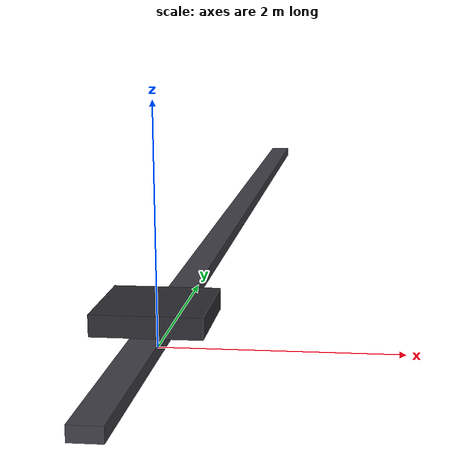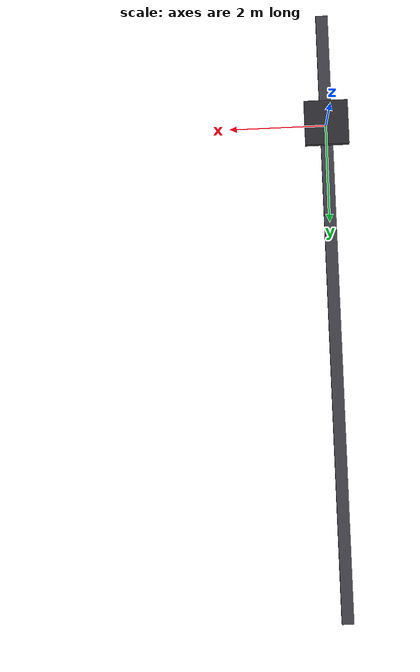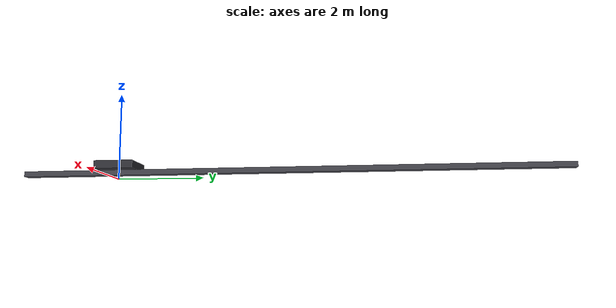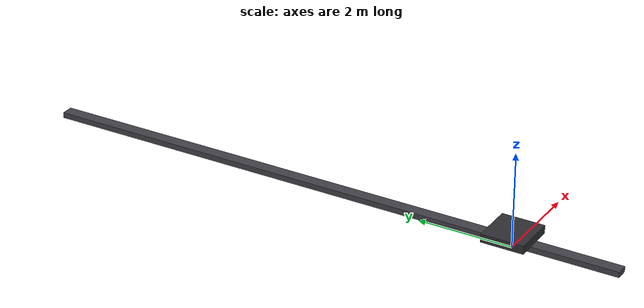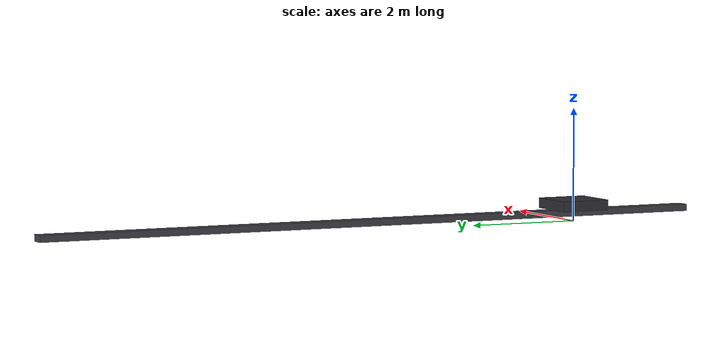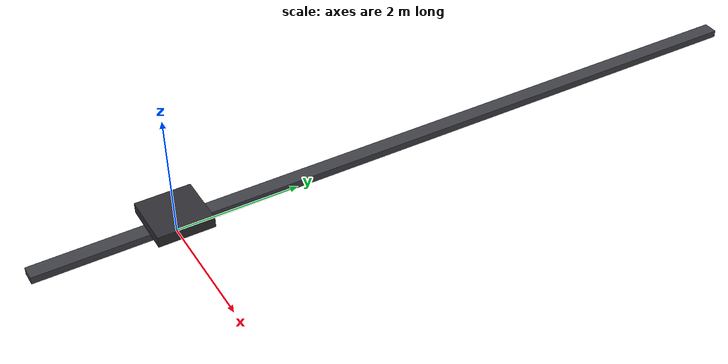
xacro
<?xml version="1.0"?>
<!--
  VIKA top-level composition.
  Usage:
    xacro vika.urdf.xacro prefix:=robot_a_ tool:=gripper
-->
<robot name="vika" xmlns:xacro="http://www.ros.org/wiki/xacro">

  <xacro:arg name="prefix" default=""/>
  <xacro:arg name="tool"   default="gripper"/>
  <xacro:arg name="ns"     default=""/>
  <xacro:arg name="arm"    default="false"/>
  <!-- World anchor for this robot (spawn pose is ignored by the world-fixed
       rail, so bake placement here). base_yaw=3.14159 faces the robot -X. -->
  <xacro:arg name="base_x"   default="0"/>
  <xacro:arg name="base_yaw" default="0"/>
  <!-- use_meshes:=true loads the Fusion CAD STLs; false uses the primitive
       box/cylinder fallbacks that match the joint kinematics exactly. -->
  <xacro:arg name="use_meshes" default="true"/>

  <xacro:property name="pfx" value="$(arg prefix)"/>
  <xacro:property name="tool_type" value="$(arg tool)"/>
  <xacro:property name="ns" value="$(arg ns)"/>
  <xacro:property name="arm_enabled" value="$(arg arm)"/>
  <xacro:property name="base_x" value="$(arg base_x)"/>
  <xacro:property name="base_yaw" value="$(arg base_yaw)"/>
  <xacro:property name="use_meshes" value="$(arg use_meshes)"/>

  <xacro:include filename="$(find vika_description)/urdf/base_rail.xacro"/>
  <xacro:include filename="$(find vika_description)/urdf/arm_6dof.xacro"/>
  <xacro:include filename="$(find vika_description)/urdf/tool_gripper.xacro"/>
  <xacro:include filename="$(find vika_description)/urdf/tool_cement.xacro"/>
  <xacro:include filename="$(find vika_description)/urdf/vika.ros2_control.xacro"/>

  <!-- Linear rail base: arm rides a prismatic carriage along world +Y. -->
  <xacro:base_rail prefix="${pfx}" base_x="${base_x}" base_yaw="${base_yaw}"/>

  <xacro:if value="${arm_enabled}">
    <xacro:property name="lock_j4" value="false"/>
    <xacro:if value="${use_meshes}">
      <xacro:arm_6dof prefix="${pfx}arm_" parent="${pfx}base_link" lock_j4="${lock_j4}">
        <origin xyz="0 0 0.09" rpy="0 0 0"/>
      </xacro:arm_6dof>
    </xacro:if>
    <xacro:unless value="${use_meshes}">
      <xacro:arm_6dof prefix="${pfx}arm_" parent="${pfx}base_link" lock_j4="${lock_j4}"
                      mesh_base_link="" mesh_link1="" mesh_link2="" mesh_link3=""
                      mesh_link4="" mesh_link5="" mesh_tool0="">
        <origin xyz="0 0 0.09" rpy="0 0 0"/>
      </xacro:arm_6dof>
    </xacro:unless>

    <xacro:if value="${tool_type == 'gripper'}">
      <xacro:tool_gripper prefix="${pfx}arm_" parent="${pfx}arm_tool0"/>
    </xacro:if>
    <xacro:if value="${tool_type == 'cement'}">
      <xacro:tool_cement prefix="${pfx}arm_" parent="${pfx}arm_tool0"/>
    </xacro:if>
  </xacro:if>

  <xacro:if value="${arm_enabled}">
    <xacro:vika_ros2_control prefix="${pfx}" ns="${ns}" tool="${tool_type}"/>
  </xacro:if>

</robot>

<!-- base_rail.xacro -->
<robot xmlns:xacro="http://www.ros.org/wiki/xacro">

  <xacro:macro name="base_rail" params="prefix base_x:=0 base_yaw:=0 rail_length:=12.5 travel:=8.0">

    <material name="rail_grey"><color rgba="0.25 0.25 0.28 1"/></material>
    <material name="carriage_dark"><color rgba="0.18 0.18 0.2 1"/></material>

    <!-- World anchor: pins the rail in place (gz fixes a 'world'-parented joint). -->
    <link name="world"/>

    <joint name="${prefix}rail_fixed" type="fixed">
      <parent link="world"/>
      <child link="${prefix}rail_base"/>
      <origin xyz="${base_x} 0 0.15" rpy="0 0 ${base_yaw}"/>
    </joint>

    <xacro:property name="lay_sign" value="${cos(base_yaw)}"/>
    <link name="${prefix}rail_base">
      <visual>
        <origin xyz="0 ${lay_sign*travel/2} 0"/>
        <geometry><box size="0.25 ${rail_length} 0.12"/></geometry>
        <material name="rail_grey"/>
      </visual>
      <collision>
        <origin xyz="0 ${lay_sign*travel/2} 0"/>
        <geometry><box size="0.25 ${rail_length} 0.12"/></geometry>
      </collision>
      <inertial>
        <mass value="80.0"/>
        <inertia ixx="40.0" iyy="2.0" izz="42.0" ixy="0" ixz="0" iyz="0"/>
      </inertial>
    </link>

    <!-- Prismatic carriage along world +Y -->
    <joint name="${prefix}rail_joint" type="prismatic">
      <parent link="${prefix}rail_base"/>
      <child link="${prefix}base_link"/>
      <origin xyz="0 0 0.15" rpy="0 0 0"/>
      <axis xyz="0 1 0"/>
      <limit lower="${(lay_sign-1)*travel/2}" upper="${(lay_sign+1)*travel/2}" effort="4000" velocity="3.0"/>
      <!-- low damping/no static friction: the old 50/20 stalled the position-PID so
           the carriage never actually slid (controller reported reached, joint frozen). -->
      <dynamics damping="2.0" friction="0.0"/>
    </joint>

    <link name="${prefix}base_link">
      <visual>
        <origin xyz="0 0 0.0" rpy="0 0 0"/>
        <geometry><box size="0.9 0.9 0.18"/></geometry>
        <material name="carriage_dark"/>
      </visual>
      <!-- no collision: the carriage is kinematically held by the prismatic joint;
           a collision box only risks jamming the slide against the rail/ground. -->
      <inertial>
        <mass value="40.0"/>
        <inertia ixx="1.5" iyy="2.0" izz="2.0" ixy="0" ixz="0" iyz="0"/>
      </inertial>
    </link>

  </xacro:macro>

</robot>
